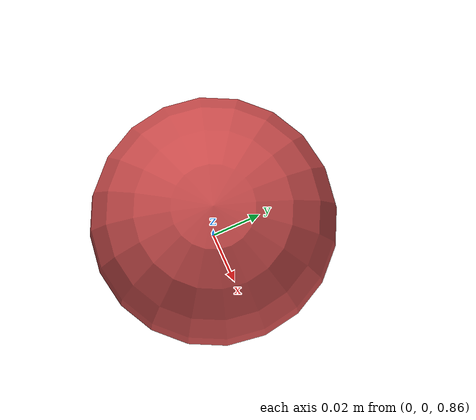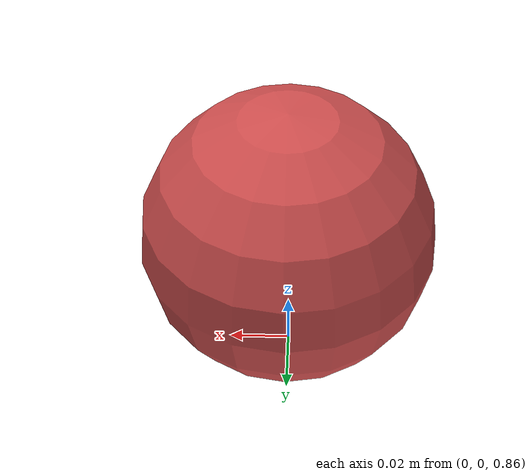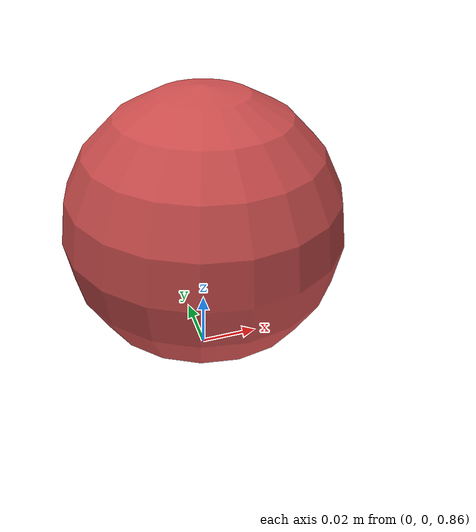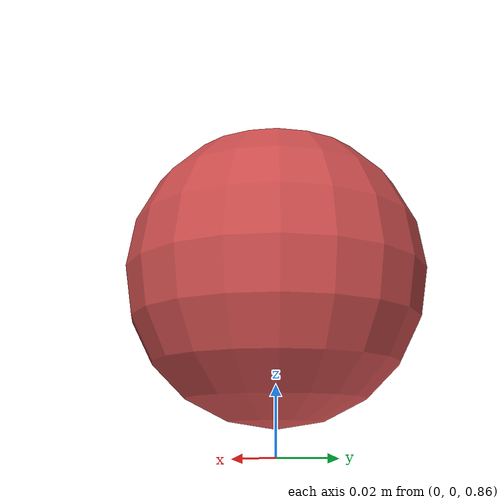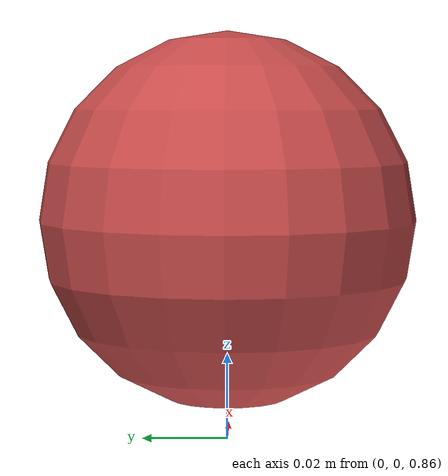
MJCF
<mujoco model="throw_001">
  <option timestep="0.001" gravity="0 0 -9.81"/>

  <visual>
    <headlight ambient="0.5 0.5 0.5"/>
  </visual>

  <asset>
    <texture name="grid" type="2d" builtin="checker" width="512" height="512" rgb1="0.2 0.3 0.4" rgb2="0.3 0.4 0.5"/>
    <material name="grid" texture="grid" texrepeat="1 1" reflectance="0.2"/>
    <material name="finger" rgba="0.8 0.3 0.3 1.0"/>
  </asset>

  <worldbody>
    <!-- Ground plane -->
    <geom name="floor" type="plane" size="2 2 0.1" material="grid"
          condim="6" friction="0.7778116337093682 0.005 0.0001" solref="0.02 1.9647321674583578"/>

    <!-- Sphere -->
    <body name="fingertip" pos="0 0 0.9113362004748244">
      <freejoint/>
      <geom name="finger" type="sphere" size="0.04375546144518306" mass="0.3792777257514283" material="finger"
            condim="6" friction="0.7778116337093682 0.005 0.0001" solref="0.02 1.9647321674583578"/>
      <site name="contact_site" pos="0 0 0" size="0.001"/>
    </body>
  </worldbody>

  <sensor>
    <touch name="finger_touch" site="contact_site"/>
    <framepos name="finger_pos" objtype="site" objname="contact_site"/>
    <framequat name="finger_quat" objtype="site" objname="contact_site"/>
    <framelinvel name="finger_vel" objtype="site" objname="contact_site"/>
  </sensor>
</mujoco>
